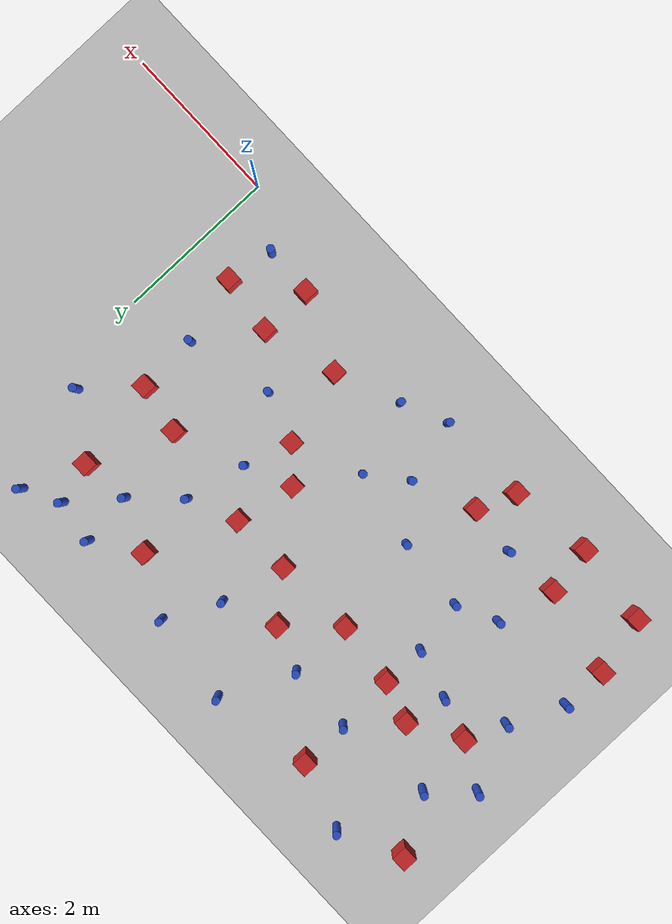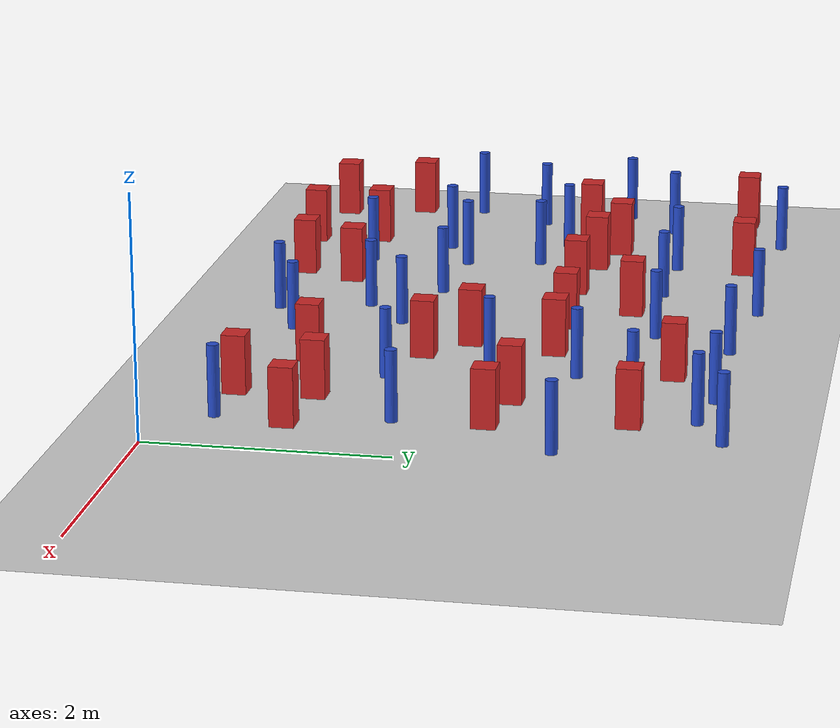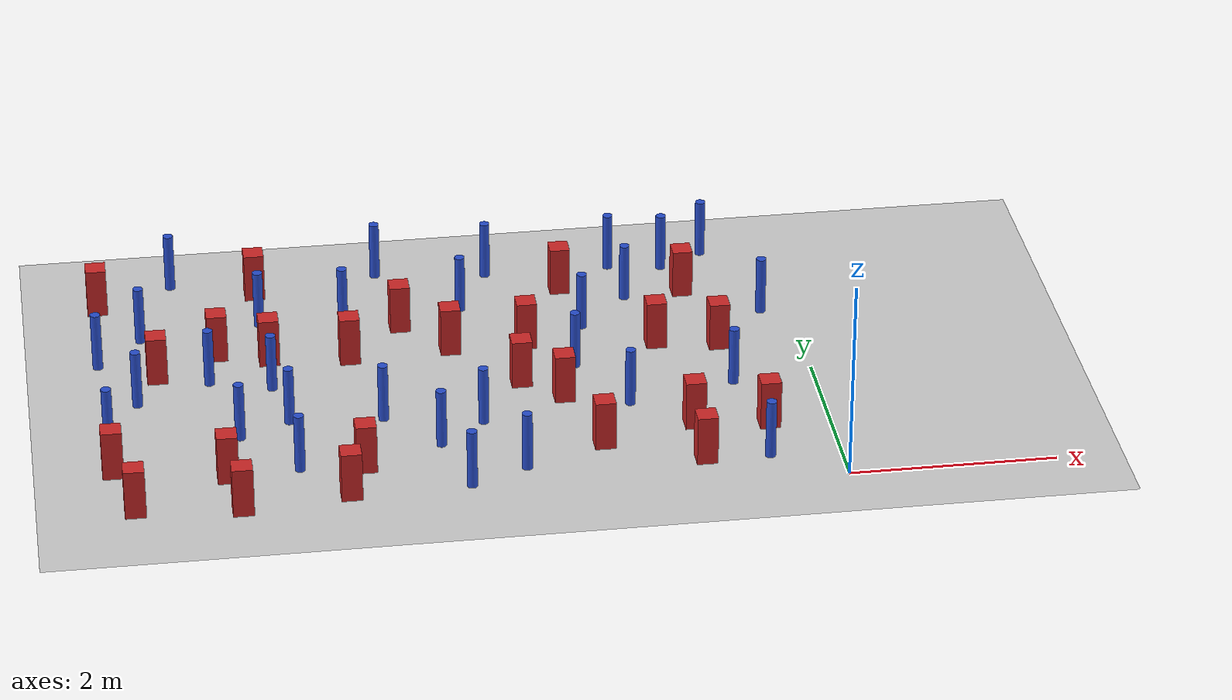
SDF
<sdf version="1.6">
 <world name="default">
  <model name="ground_plane">
   <static>1</static>
   <link name="link">
    <collision name="collision">
     <geometry><plane><normal>0 0 1</normal><size>100 100</size></plane></geometry>
     <surface><friction><ode><mu>100</mu><mu2>50</mu2></ode></friction></surface>
    </collision>
    <visual name="visual">
     <cast_shadows>0</cast_shadows>
     <geometry><plane><normal>0 0 1</normal><size>100 100</size></plane></geometry>
     <material>
      <ambient>1.0 1.0 1.0 1.0</ambient>
      <diffuse>0.8 0.8 0.8 1.0</diffuse>
      <specular>0.01 0.01 0.01 1.000000</specular>
     </material>
    </visual>
   </link>
  </model>
  <model name="pole_obstacle1">
   <static>true</static>
   <pose>-6.14865778615 4.48275335902 7.38925637345e-09 -8.47170692796e-08 1.24976764786e-08 -1.74513093032e-07</pose>
   <link name="link">
    <pose>0 0 0.3 0 -0 0</pose>
    <inertial>
     <mass>1</mass>
     <inertia><ixx>0.145833</ixx><ixy>0</ixy><ixz>0</ixz><iyy>0.145833</iyy><iyz>0</iyz><izz>0.125</izz></inertia>
    </inertial>
    <collision name="collision">
     <geometry><cylinder><radius>0.05</radius><length>.6</length></cylinder></geometry>
    </collision>
    <visual name="visual">
     <geometry><cylinder><radius>0.05</radius><length>.6</length></cylinder></geometry>
     <material>
      <script><name>Gazebo/Blue</name><uri>file://media/materials/scripts/gazebo.material</uri></script>
     </material>
    </visual>
   </link>
  </model>
  <model name="pole_obstacle2">
   <static>true</static>
   <pose>-4.06735478396 4.44115292767 7.38925637345e-09 -8.47170692796e-08 1.24976764786e-08 -1.74513093032e-07</pose>
   <link name="link">
    <pose>0 0 0.3 0 -0 0</pose>
    <inertial>
     <mass>1</mass>
     <inertia><ixx>0.145833</ixx><ixy>0</ixy><ixz>0</ixz><iyy>0.145833</iyy><iyz>0</iyz><izz>0.125</izz></inertia>
    </inertial>
    <collision name="collision">
     <geometry><cylinder><radius>0.05</radius><length>.6</length></cylinder></geometry>
    </collision>
    <visual name="visual">
     <geometry><cylinder><radius>0.05</radius><length>.6</length></cylinder></geometry>
     <material>
      <script><name>Gazebo/Blue</name><uri>file://media/materials/scripts/gazebo.material</uri></script>
     </material>
    </visual>
   </link>
  </model>
  <model name="pole_obstacle21">
   <static>true</static>
   <pose>-1.86597167639 1.57072331773 7.38925637345e-09 -8.471706928e-08 1.24976765079e-08 -1.74513093017e-07</pose>
   <link name="link">
    <pose>0 0 0.3 0 -0 0</pose>
    <inertial>
     <mass>1</mass>
     <inertia><ixx>0.145833</ixx><ixy>0</ixy><ixz>0</ixz><iyy>0.145833</iyy><iyz>0</iyz><izz>0.125</izz></inertia>
    </inertial>
    <collision name="collision">
     <geometry><cylinder><radius>0.05</radius><length>.6</length></cylinder></geometry>
    </collision>
    <visual name="visual">
     <geometry><cylinder><radius>0.05</radius><length>.6</length></cylinder></geometry>
     <material>
      <script><name>Gazebo/Blue</name><uri>file://media/materials/scripts/gazebo.material</uri></script>
     </material>
    </visual>
   </link>
  </model>
  <model name="square_post_obstacle38">
   <static>true</static>
   <pose>-2.22607915903 0.851407876056 1.91545236811e-07 -7.35059704564e-06 1.12565212e-07 2.39332434364e-05</pose>
   <link name="link">
    <pose>0 0 0.25 0 -0 0</pose>
    <inertial>
     <mass>100</mass>
     <inertia>
      <ixx>0.166667</ixx>
      <ixy>0</ixy>
      <ixz>0</ixz>
      <iyy>0.166667</iyy>
      <iyz>0</iyz>
      <izz>0.166667</izz>
     </inertia>
    </inertial>
    <collision name="collision"><geometry><box><size>.2 .2 .5</size></box></geometry></collision>
    <visual name="visual">
     <geometry><box><size>.2 .2 .5</size></box></geometry>
     <material>
      <script><name>Gazebo/Red</name><uri>file://media/materials/scripts/gazebo.material</uri></script>
     </material>
    </visual>
   </link>
  </model>
  <model name="pole_obstacle39">
   <static>true</static>
   <pose>-0.690783097909 0.423462583873 7.38925637345e-09 -8.471706928e-08 1.24976765108e-08 -1.74513093015e-07</pose>
   <link name="link">
    <pose>0 0 0.3 0 -0 0</pose>
    <inertial>
     <mass>1</mass>
     <inertia><ixx>0.145833</ixx><ixy>0</ixy><ixz>0</ixz><iyy>0.145833</iyy><iyz>0</iyz><izz>0.125</izz></inertia>
    </inertial>
    <collision name="collision">
     <geometry><cylinder><radius>0.05</radius><length>.6</length></cylinder></geometry>
    </collision>
    <visual name="visual">
     <geometry><cylinder><radius>0.05</radius><length>.6</length></cylinder></geometry>
     <material>
      <script><name>Gazebo/Blue</name><uri>file://media/materials/scripts/gazebo.material</uri></script>
     </material>
    </visual>
   </link>
  </model>
  <model name="pole_obstacle40">
   <static>true</static>
   <pose>-2.95503908914 4.30115537466 7.38925637345e-09 -8.47170692798e-08 1.24976765033e-08 -1.74513093019e-07</pose>
   <link name="link">
    <pose>0 0 0.3 0 -0 0</pose>
    <inertial>
     <mass>1</mass>
     <inertia><ixx>0.145833</ixx><ixy>0</ixy><ixz>0</ixz><iyy>0.145833</iyy><iyz>0</iyz><izz>0.125</izz></inertia>
    </inertial>
    <collision name="collision">
     <geometry><cylinder><radius>0.05</radius><length>.6</length></cylinder></geometry>
    </collision>
    <visual name="visual">
     <geometry><cylinder><radius>0.05</radius><length>.6</length></cylinder></geometry>
     <material>
      <script><name>Gazebo/Blue</name><uri>file://media/materials/scripts/gazebo.material</uri></script>
     </material>
    </visual>
   </link>
  </model>
  <model name="square_post_obstacle40">
   <static>true</static>
   <pose>-6.73222704593 0.236454288229 1.91545236811e-07 -7.35059704564e-06 1.12565212e-07 2.39332434364e-05</pose>
   <link name="link">
    <pose>0 0 0.25 0 -0 0</pose>
    <inertial>
     <mass>100</mass>
     <inertia>
      <ixx>0.166667</ixx>
      <ixy>0</ixy>
      <ixz>0</ixz>
      <iyy>0.166667</iyy>
      <iyz>0</iyz>
      <izz>0.166667</izz>
     </inertia>
    </inertial>
    <collision name="collision"><geometry><box><size>.2 .2 .5</size></box></geometry></collision>
    <visual name="visual">
     <geometry><box><size>.2 .2 .5</size></box></geometry>
     <material>
      <script><name>Gazebo/Red</name><uri>file://media/materials/scripts/gazebo.material</uri></script>
     </material>
    </visual>
   </link>
  </model>
  <model name="pole_obstacle44">
   <static>true</static>
   <pose>-1.61657921956 3.64272164562 7.38925637345e-09 -8.47170692799e-08 1.24976765053e-08 -1.74513093017e-07</pose>
   <link name="link">
    <pose>0 0 0.3 0 -0 0</pose>
    <inertial>
     <mass>1</mass>
     <inertia><ixx>0.145833</ixx><ixy>0</ixy><ixz>0</ixz><iyy>0.145833</iyy><iyz>0</iyz><izz>0.125</izz></inertia>
    </inertial>
    <collision name="collision">
     <geometry><cylinder><radius>0.05</radius><length>.6</length></cylinder></geometry>
    </collision>
    <visual name="visual">
     <geometry><cylinder><radius>0.05</radius><length>.6</length></cylinder></geometry>
     <material>
      <script><name>Gazebo/Blue</name><uri>file://media/materials/scripts/gazebo.material</uri></script>
     </material>
    </visual>
   </link>
  </model>
  <model name="square_post_obstacle43">
   <static>true</static>
   <pose>-1.44739269963 2.68400470158 1.91545236811e-07 -7.35059704564e-06 1.12565212e-07 2.39332434364e-05</pose>
   <link name="link">
    <pose>0 0 0.25 0 -0 0</pose>
    <inertial>
     <mass>100</mass>
     <inertia>
      <ixx>0.166667</ixx>
      <ixy>0</ixy>
      <ixz>0</ixz>
      <iyy>0.166667</iyy>
      <iyz>0</iyz>
      <izz>0.166667</izz>
     </inertia>
    </inertial>
    <collision name="collision"><geometry><box><size>.2 .2 .5</size></box></geometry></collision>
    <visual name="visual">
     <geometry><box><size>.2 .2 .5</size></box></geometry>
     <material>
      <script><name>Gazebo/Red</name><uri>file://media/materials/scripts/gazebo.material</uri></script>
     </material>
    </visual>
   </link>
  </model>
  <model name="pole_obstacle49">
   <static>true</static>
   <pose>-0.710290570412 4.45550159111 7.38925637345e-09 -8.471706928e-08 1.24976765086e-08 -1.74513093015e-07</pose>
   <link name="link">
    <pose>0 0 0.3 0 -0 0</pose>
    <inertial>
     <mass>1</mass>
     <inertia><ixx>0.145833</ixx><ixy>0</ixy><ixz>0</ixz><iyy>0.145833</iyy><iyz>0</iyz><izz>0.125</izz></inertia>
    </inertial>
    <collision name="collision">
     <geometry><cylinder><radius>0.05</radius><length>.6</length></cylinder></geometry>
    </collision>
    <visual name="visual">
     <geometry><cylinder><radius>0.05</radius><length>.6</length></cylinder></geometry>
     <material>
      <script><name>Gazebo/Blue</name><uri>file://media/materials/scripts/gazebo.material</uri></script>
     </material>
    </visual>
   </link>
  </model>
  <model name="square_post_obstacle52">
   <static>true</static>
   <pose>-2.86460716975 2.1140437889 1.91545236811e-07 -7.35059704564e-06 1.12565212e-07 2.39332434364e-05</pose>
   <link name="link">
    <pose>0 0 0.25 0 -0 0</pose>
    <inertial>
     <mass>100</mass>
     <inertia>
      <ixx>0.166667</ixx>
      <ixy>0</ixy>
      <ixz>0</ixz>
      <iyy>0.166667</iyy>
      <iyz>0</iyz>
      <izz>0.166667</izz>
     </inertia>
    </inertial>
    <collision name="collision"><geometry><box><size>.2 .2 .5</size></box></geometry></collision>
    <visual name="visual">
     <geometry><box><size>.2 .2 .5</size></box></geometry>
     <material>
      <script><name>Gazebo/Red</name><uri>file://media/materials/scripts/gazebo.material</uri></script>
     </material>
    </visual>
   </link>
  </model>
  <model name="square_post_obstacle56">
   <static>true</static>
   <pose>-3.48142821546 2.83543751299 1.91545236811e-07 -7.35059704564e-06 1.12565212e-07 2.39332434364e-05</pose>
   <link name="link">
    <pose>0 0 0.25 0 -0 0</pose>
    <inertial>
     <mass>100</mass>
     <inertia>
      <ixx>0.166667</ixx>
      <ixy>0</ixy>
      <ixz>0</ixz>
      <iyy>0.166667</iyy>
      <iyz>0</iyz>
      <izz>0.166667</izz>
     </inertia>
    </inertial>
    <collision name="collision"><geometry><box><size>.2 .2 .5</size></box></geometry></collision>
    <visual name="visual">
     <geometry><box><size>.2 .2 .5</size></box></geometry>
     <material>
      <script><name>Gazebo/Red</name><uri>file://media/materials/scripts/gazebo.material</uri></script>
     </material>
    </visual>
   </link>
  </model>
  <model name="pole_obstacle55">
   <static>true</static>
   <pose>-6.60409815827 2.18884566418 7.38925637345e-09 -8.47170692798e-08 1.24976764937e-08 -1.74513093023e-07</pose>
   <link name="link">
    <pose>0 0 0.3 0 -0 0</pose>
    <inertial>
     <mass>1</mass>
     <inertia><ixx>0.145833</ixx><ixy>0</ixy><ixz>0</ixz><iyy>0.145833</iyy><iyz>0</iyz><izz>0.125</izz></inertia>
    </inertial>
    <collision name="collision">
     <geometry><cylinder><radius>0.05</radius><length>.6</length></cylinder></geometry>
    </collision>
    <visual name="visual">
     <geometry><cylinder><radius>0.05</radius><length>.6</length></cylinder></geometry>
     <material>
      <script><name>Gazebo/Blue</name><uri>file://media/materials/scripts/gazebo.material</uri></script>
     </material>
    </visual>
   </link>
  </model>
  <model name="pole_obstacle60">
   <static>true</static>
   <pose>-5.14502317689 0.787734742347 7.38925637345e-09 -8.47170692799e-08 1.24976765038e-08 -1.74513093018e-07</pose>
   <link name="link">
    <pose>0 0 0.3 0 -0 0</pose>
    <inertial>
     <mass>1</mass>
     <inertia><ixx>0.145833</ixx><ixy>0</ixy><ixz>0</ixz><iyy>0.145833</iyy><iyz>0</iyz><izz>0.125</izz></inertia>
    </inertial>
    <collision name="collision">
     <geometry><cylinder><radius>0.05</radius><length>.6</length></cylinder></geometry>
    </collision>
    <visual name="visual">
     <geometry><cylinder><radius>0.05</radius><length>.6</length></cylinder></geometry>
     <material>
      <script><name>Gazebo/Blue</name><uri>file://media/materials/scripts/gazebo.material</uri></script>
     </material>
    </visual>
   </link>
  </model>
  <model name="square_post_obstacle65">
   <static>true</static>
   <pose>-6.90237740212 4.10982722146 1.91545236811e-07 -7.35059704564e-06 1.12565212e-07 2.39332434364e-05</pose>
   <link name="link">
    <pose>0 0 0.25 0 -0 0</pose>
    <inertial>
     <mass>100</mass>
     <inertia>
      <ixx>0.166667</ixx>
      <ixy>0</ixy>
      <ixz>0</ixz>
      <iyy>0.166667</iyy>
      <iyz>0</iyz>
      <izz>0.166667</izz>
     </inertia>
    </inertial>
    <collision name="collision"><geometry><box><size>.2 .2 .5</size></box></geometry></collision>
    <visual name="visual">
     <geometry><box><size>.2 .2 .5</size></box></geometry>
     <material>
      <script><name>Gazebo/Red</name><uri>file://media/materials/scripts/gazebo.material</uri></script>
     </material>
    </visual>
   </link>
  </model>
  <model name="pole_obstacle69">
   <static>true</static>
   <pose>-6.91515530589 1.52626352857 7.38925637345e-09 -8.471706928e-08 1.24976765134e-08 -1.74513093015e-07</pose>
   <link name="link">
    <pose>0 0 0.3 0 -0 0</pose>
    <inertial>
     <mass>1</mass>
     <inertia><ixx>0.145833</ixx><ixy>0</ixy><ixz>0</ixz><iyy>0.145833</iyy><iyz>0</iyz><izz>0.125</izz></inertia>
    </inertial>
    <collision name="collision">
     <geometry><cylinder><radius>0.05</radius><length>.6</length></cylinder></geometry>
    </collision>
    <visual name="visual">
     <geometry><cylinder><radius>0.05</radius><length>.6</length></cylinder></geometry>
     <material>
      <script><name>Gazebo/Blue</name><uri>file://media/materials/scripts/gazebo.material</uri></script>
     </material>
    </visual>
   </link>
  </model>
  <model name="pole_obstacle70">
   <static>true</static>
   <pose>-5.66341274395 1.438045553 7.38925637345e-09 -8.471706928e-08 1.24976765134e-08 -1.74513093015e-07</pose>
   <link name="link">
    <pose>0 0 0.3 0 -0 0</pose>
    <inertial>
     <mass>1</mass>
     <inertia><ixx>0.145833</ixx><ixy>0</ixy><ixz>0</ixz><iyy>0.145833</iyy><iyz>0</iyz><izz>0.125</izz></inertia>
    </inertial>
    <collision name="collision">
     <geometry><cylinder><radius>0.05</radius><length>.6</length></cylinder></geometry>
    </collision>
    <visual name="visual">
     <geometry><cylinder><radius>0.05</radius><length>.6</length></cylinder></geometry>
     <material>
      <script><name>Gazebo/Blue</name><uri>file://media/materials/scripts/gazebo.material</uri></script>
     </material>
    </visual>
   </link>
  </model>
  <model name="square_post_obstacle78">
   <static>true</static>
   <pose>-2.24796341832 3.90744460623 1.91545236811e-07 -7.35059704564e-06 1.12565212e-07 2.39332434364e-05</pose>
   <link name="link">
    <pose>0 0 0.25 0 -0 0</pose>
    <inertial>
     <mass>100</mass>
     <inertia>
      <ixx>0.166667</ixx>
      <ixy>0</ixy>
      <ixz>0</ixz>
      <iyy>0.166667</iyy>
      <iyz>0</iyz>
      <izz>0.166667</izz>
     </inertia>
    </inertial>
    <collision name="collision"><geometry><box><size>.2 .2 .5</size></box></geometry></collision>
    <visual name="visual">
     <geometry><box><size>.2 .2 .5</size></box></geometry>
     <material>
      <script><name>Gazebo/Red</name><uri>file://media/materials/scripts/gazebo.material</uri></script>
     </material>
    </visual>
   </link>
  </model>
  <model name="pole_obstacle81">
   <static>true</static>
   <pose>-5.31425257479 3.5985467243 7.38925637345e-09 -8.47170692798e-08 1.24976764937e-08 -1.74513093023e-07</pose>
   <link name="link">
    <pose>0 0 0.3 0 -0 0</pose>
    <inertial>
     <mass>1</mass>
     <inertia><ixx>0.145833</ixx><ixy>0</ixy><ixz>0</ixz><iyy>0.145833</iyy><iyz>0</iyz><izz>0.125</izz></inertia>
    </inertial>
    <collision name="collision">
     <geometry><cylinder><radius>0.05</radius><length>.6</length></cylinder></geometry>
    </collision>
    <visual name="visual">
     <geometry><cylinder><radius>0.05</radius><length>.6</length></cylinder></geometry>
     <material>
      <script><name>Gazebo/Blue</name><uri>file://media/materials/scripts/gazebo.material</uri></script>
     </material>
    </visual>
   </link>
  </model>
  <model name="pole_obstacle82">
   <static>true</static>
   <pose>-2.1235779773 3.11872001168 7.38925637345e-09 -8.47170692798e-08 1.24976764939e-08 -1.74513093025e-07</pose>
   <link name="link">
    <pose>0 0 0.3 0 -0 0</pose>
    <inertial>
     <mass>1</mass>
     <inertia><ixx>0.145833</ixx><ixy>0</ixy><ixz>0</ixz><iyy>0.145833</iyy><iyz>0</iyz><izz>0.125</izz></inertia>
    </inertial>
    <collision name="collision">
     <geometry><cylinder><radius>0.05</radius><length>.6</length></cylinder></geometry>
    </collision>
    <visual name="visual">
     <geometry><cylinder><radius>0.05</radius><length>.6</length></cylinder></geometry>
     <material>
      <script><name>Gazebo/Blue</name><uri>file://media/materials/scripts/gazebo.material</uri></script>
     </material>
    </visual>
   </link>
  </model>
  <model name="square_post_obstacle85">
   <static>true</static>
   <pose>-1.31230567174 1.10321324677 1.91545236811e-07 -7.35059704564e-06 1.12565212e-07 2.39332434364e-05</pose>
   <link name="link">
    <pose>0 0 0.25 0 -0 0</pose>
    <inertial>
     <mass>100</mass>
     <inertia>
      <ixx>0.166667</ixx>
      <ixy>0</ixy>
      <ixz>0</ixz>
      <iyy>0.166667</iyy>
      <iyz>0</iyz>
      <izz>0.166667</izz>
     </inertia>
    </inertial>
    <collision name="collision"><geometry><box><size>.2 .2 .5</size></box></geometry></collision>
    <visual name="visual">
     <geometry><box><size>.2 .2 .5</size></box></geometry>
     <material>
      <script><name>Gazebo/Red</name><uri>file://media/materials/scripts/gazebo.material</uri></script>
     </material>
    </visual>
   </link>
  </model>
  <model name="square_post_obstacle93">
   <static>true</static>
   <pose>-5.83377725022 0.724433717618 1.91545236811e-07 -7.35059704564e-06 1.12565212e-07 2.39332434364e-05</pose>
   <link name="link">
    <pose>0 0 0.25 0 -0 0</pose>
    <inertial>
     <mass>100</mass>
     <inertia>
      <ixx>0.166667</ixx>
      <ixy>0</ixy>
      <ixz>0</ixz>
      <iyy>0.166667</iyy>
      <iyz>0</iyz>
      <izz>0.166667</izz>
     </inertia>
    </inertial>
    <collision name="collision"><geometry><box><size>.2 .2 .5</size></box></geometry></collision>
    <visual name="visual">
     <geometry><box><size>.2 .2 .5</size></box></geometry>
     <material>
      <script><name>Gazebo/Red</name><uri>file://media/materials/scripts/gazebo.material</uri></script>
     </material>
    </visual>
   </link>
  </model>
  <model name="square_post_obstacle94">
   <static>true</static>
   <pose>-0.600754613226 1.01032702605 1.91545236811e-07 -7.35059704564e-06 1.12565212e-07 2.39332434364e-05</pose>
   <link name="link">
    <pose>0 0 0.25 0 -0 0</pose>
    <inertial>
     <mass>100</mass>
     <inertia>
      <ixx>0.166667</ixx>
      <ixy>0</ixy>
      <ixz>0</ixz>
      <iyy>0.166667</iyy>
      <iyz>0</iyz>
      <izz>0.166667</izz>
     </inertia>
    </inertial>
    <collision name="collision"><geometry><box><size>.2 .2 .5</size></box></geometry></collision>
    <visual name="visual">
     <geometry><box><size>.2 .2 .5</size></box></geometry>
     <material>
      <script><name>Gazebo/Red</name><uri>file://media/materials/scripts/gazebo.material</uri></script>
     </material>
    </visual>
   </link>
  </model>
  <model name="pole_obstacle107">
   <static>true</static>
   <pose>-3.56458843002 0.277346794933 7.38925637345e-09 -8.471706928e-08 1.24976765126e-08 -1.74513093015e-07</pose>
   <link name="link">
    <pose>0 0 0.3 0 -0 0</pose>
    <inertial>
     <mass>1</mass>
     <inertia><ixx>0.145833</ixx><ixy>0</ixy><ixz>0</ixz><iyy>0.145833</iyy><iyz>0</iyz><izz>0.125</izz></inertia>
    </inertial>
    <collision name="collision">
     <geometry><cylinder><radius>0.05</radius><length>.6</length></cylinder></geometry>
    </collision>
    <visual name="visual">
     <geometry><cylinder><radius>0.05</radius><length>.6</length></cylinder></geometry>
     <material>
      <script><name>Gazebo/Blue</name><uri>file://media/materials/scripts/gazebo.material</uri></script>
     </material>
    </visual>
   </link>
  </model>
  <model name="pole_obstacle114">
   <static>true</static>
   <pose>-5.16998351022 1.67273129654 7.38925637345e-09 -8.471706928e-08 1.24976765134e-08 -1.74513093015e-07</pose>
   <link name="link">
    <pose>0 0 0.3 0 -0 0</pose>
    <inertial>
     <mass>1</mass>
     <inertia><ixx>0.145833</ixx><ixy>0</ixy><ixz>0</ixz><iyy>0.145833</iyy><iyz>0</iyz><izz>0.125</izz></inertia>
    </inertial>
    <collision name="collision">
     <geometry><cylinder><radius>0.05</radius><length>.6</length></cylinder></geometry>
    </collision>
    <visual name="visual">
     <geometry><cylinder><radius>0.05</radius><length>.6</length></cylinder></geometry>
     <material>
      <script><name>Gazebo/Blue</name><uri>file://media/materials/scripts/gazebo.material</uri></script>
     </material>
    </visual>
   </link>
  </model>
  <model name="square_post_obstacle109">
   <static>true</static>
   <pose>-6.38499440083 2.66430794587 1.91545236811e-07 -7.35059704564e-06 1.12565212e-07 2.39332434364e-05</pose>
   <link name="link">
    <pose>0 0 0.25 0 -0 0</pose>
    <inertial>
     <mass>100</mass>
     <inertia>
      <ixx>0.166667</ixx>
      <ixy>0</ixy>
      <ixz>0</ixz>
      <iyy>0.166667</iyy>
      <iyz>0</iyz>
      <izz>0.166667</izz>
     </inertia>
    </inertial>
    <collision name="collision"><geometry><box><size>.2 .2 .5</size></box></geometry></collision>
    <visual name="visual">
     <geometry><box><size>.2 .2 .5</size></box></geometry>
     <material>
      <script><name>Gazebo/Red</name><uri>file://media/materials/scripts/gazebo.material</uri></script>
     </material>
    </visual>
   </link>
  </model>
  <model name="square_post_obstacle114">
   <static>true</static>
   <pose>-5.73395270936 0.132266583894 1.91545236811e-07 -7.35059704564e-06 1.12565212e-07 2.39332434364e-05</pose>
   <link name="link">
    <pose>0 0 0.25 0 -0 0</pose>
    <inertial>
     <mass>100</mass>
     <inertia>
      <ixx>0.166667</ixx>
      <ixy>0</ixy>
      <ixz>0</ixz>
      <iyy>0.166667</iyy>
      <iyz>0</iyz>
      <izz>0.166667</izz>
     </inertia>
    </inertial>
    <collision name="collision"><geometry><box><size>.2 .2 .5</size></box></geometry></collision>
    <visual name="visual">
     <geometry><box><size>.2 .2 .5</size></box></geometry>
     <material>
      <script><name>Gazebo/Red</name><uri>file://media/materials/scripts/gazebo.material</uri></script>
     </material>
    </visual>
   </link>
  </model>
  <model name="pole_obstacle130">
   <static>true</static>
   <pose>-3.0094705868 0.524674717035 7.38925637345e-09 -8.47170692797e-08 1.24976764783e-08 -1.74513093034e-07</pose>
   <link name="link">
    <pose>0 0 0.3 0 -0 0</pose>
    <inertial>
     <mass>1</mass>
     <inertia><ixx>0.145833</ixx><ixy>0</ixy><ixz>0</ixz><iyy>0.145833</iyy><iyz>0</iyz><izz>0.125</izz></inertia>
    </inertial>
    <collision name="collision">
     <geometry><cylinder><radius>0.05</radius><length>.6</length></cylinder></geometry>
    </collision>
    <visual name="visual">
     <geometry><cylinder><radius>0.05</radius><length>.6</length></cylinder></geometry>
     <material>
      <script><name>Gazebo/Blue</name><uri>file://media/materials/scripts/gazebo.material</uri></script>
     </material>
    </visual>
   </link>
  </model>
  <model name="pole_obstacle136">
   <static>true</static>
   <pose>-1.15704277731 4.21577024329 7.38925637345e-09 -8.47170692799e-08 1.24976765033e-08 -1.74513093018e-07</pose>
   <link name="link">
    <pose>0 0 0.3 0 -0 0</pose>
    <inertial>
     <mass>1</mass>
     <inertia><ixx>0.145833</ixx><ixy>0</ixy><ixz>0</ixz><iyy>0.145833</iyy><iyz>0</iyz><izz>0.125</izz></inertia>
    </inertial>
    <collision name="collision">
     <geometry><cylinder><radius>0.05</radius><length>.6</length></cylinder></geometry>
    </collision>
    <visual name="visual">
     <geometry><cylinder><radius>0.05</radius><length>.6</length></cylinder></geometry>
     <material>
      <script><name>Gazebo/Blue</name><uri>file://media/materials/scripts/gazebo.material</uri></script>
     </material>
    </visual>
   </link>
  </model>
  <model name="square_post_obstacle126">
   <static>true</static>
   <pose>-4.70818930514 0.260790215962 1.91545236811e-07 -7.35059704564e-06 1.12565212e-07 2.39332434364e-05</pose>
   <link name="link">
    <pose>0 0 0.25 0 -0 0</pose>
    <inertial>
     <mass>100</mass>
     <inertia>
      <ixx>0.166667</ixx>
      <ixy>0</ixy>
      <ixz>0</ixz>
      <iyy>0.166667</iyy>
      <iyz>0</iyz>
      <izz>0.166667</izz>
     </inertia>
    </inertial>
    <collision name="collision"><geometry><box><size>.2 .2 .5</size></box></geometry></collision>
    <visual name="visual">
     <geometry><box><size>.2 .2 .5</size></box></geometry>
     <material>
      <script><name>Gazebo/Red</name><uri>file://media/materials/scripts/gazebo.material</uri></script>
     </material>
    </visual>
   </link>
  </model>
  <model name="square_post_obstacle130">
   <static>true</static>
   <pose>-1.02901003338 3.69196261055 1.91545236811e-07 -7.35059704564e-06 1.12565212e-07 2.39332434364e-05</pose>
   <link name="link">
    <pose>0 0 0.25 0 -0 0</pose>
    <inertial>
     <mass>100</mass>
     <inertia>
      <ixx>0.166667</ixx>
      <ixy>0</ixy>
      <ixz>0</ixz>
      <iyy>0.166667</iyy>
      <iyz>0</iyz>
      <izz>0.166667</izz>
     </inertia>
    </inertial>
    <collision name="collision"><geometry><box><size>.2 .2 .5</size></box></geometry></collision>
    <visual name="visual">
     <geometry><box><size>.2 .2 .5</size></box></geometry>
     <material>
      <script><name>Gazebo/Red</name><uri>file://media/materials/scripts/gazebo.material</uri></script>
     </material>
    </visual>
   </link>
  </model>
  <model name="pole_obstacle143">
   <static>true</static>
   <pose>-5.88446739142 2.51136598386 7.38925637345e-09 -8.47170692798e-08 1.24976764937e-08 -1.74513093023e-07</pose>
   <link name="link">
    <pose>0 0 0.3 0 -0 0</pose>
    <inertial>
     <mass>1</mass>
     <inertia><ixx>0.145833</ixx><ixy>0</ixy><ixz>0</ixz><iyy>0.145833</iyy><iyz>0</iyz><izz>0.125</izz></inertia>
    </inertial>
    <collision name="collision">
     <geometry><cylinder><radius>0.05</radius><length>.6</length></cylinder></geometry>
    </collision>
    <visual name="visual">
     <geometry><cylinder><radius>0.05</radius><length>.6</length></cylinder></geometry>
     <material>
      <script><name>Gazebo/Blue</name><uri>file://media/materials/scripts/gazebo.material</uri></script>
     </material>
    </visual>
   </link>
  </model>
  <model name="square_post_obstacle136">
   <static>true</static>
   <pose>-4.48335180431 2.78338271974 1.91545236811e-07 -7.35059704564e-06 1.12565212e-07 2.39332434364e-05</pose>
   <link name="link">
    <pose>0 0 0.25 0 -0 0</pose>
    <inertial>
     <mass>100</mass>
     <inertia>
      <ixx>0.166667</ixx>
      <ixy>0</ixy>
      <ixz>0</ixz>
      <iyy>0.166667</iyy>
      <iyz>0</iyz>
      <izz>0.166667</izz>
     </inertia>
    </inertial>
    <collision name="collision"><geometry><box><size>.2 .2 .5</size></box></geometry></collision>
    <visual name="visual">
     <geometry><box><size>.2 .2 .5</size></box></geometry>
     <material>
      <script><name>Gazebo/Red</name><uri>file://media/materials/scripts/gazebo.material</uri></script>
     </material>
    </visual>
   </link>
  </model>
  <model name="pole_obstacle147">
   <static>true</static>
   <pose>-0.300934471647 3.18273411583 7.38925637345e-09 -8.471706928e-08 1.24976765084e-08 -1.74513093017e-07</pose>
   <link name="link">
    <pose>0 0 0.3 0 -0 0</pose>
    <inertial>
     <mass>1</mass>
     <inertia><ixx>0.145833</ixx><ixy>0</ixy><ixz>0</ixz><iyy>0.145833</iyy><iyz>0</iyz><izz>0.125</izz></inertia>
    </inertial>
    <collision name="collision">
     <geometry><cylinder><radius>0.05</radius><length>.6</length></cylinder></geometry>
    </collision>
    <visual name="visual">
     <geometry><cylinder><radius>0.05</radius><length>.6</length></cylinder></geometry>
     <material>
      <script><name>Gazebo/Blue</name><uri>file://media/materials/scripts/gazebo.material</uri></script>
     </material>
    </visual>
   </link>
  </model>
  <model name="pole_obstacle153">
   <static>true</static>
   <pose>-5.28550151443 2.33236730993 7.38925637345e-09 -8.47170692798e-08 1.24976764937e-08 -1.74513093023e-07</pose>
   <link name="link">
    <pose>0 0 0.3 0 -0 0</pose>
    <inertial>
     <mass>1</mass>
     <inertia><ixx>0.145833</ixx><ixy>0</ixy><ixz>0</ixz><iyy>0.145833</iyy><iyz>0</iyz><izz>0.125</izz></inertia>
    </inertial>
    <collision name="collision">
     <geometry><cylinder><radius>0.05</radius><length>.6</length></cylinder></geometry>
    </collision>
    <visual name="visual">
     <geometry><cylinder><radius>0.05</radius><length>.6</length></cylinder></geometry>
     <material>
      <script><name>Gazebo/Blue</name><uri>file://media/materials/scripts/gazebo.material</uri></script>
     </material>
    </visual>
   </link>
  </model>
  <model name="square_post_obstacle150">
   <static>true</static>
   <pose>-0.836785223146 2.57500030621 1.91545236811e-07 -7.35059704564e-06 1.12565212e-07 2.39332434364e-05</pose>
   <link name="link">
    <pose>0 0 0.25 0 -0 0</pose>
    <inertial>
     <mass>100</mass>
     <inertia>
      <ixx>0.166667</ixx>
      <ixy>0</ixy>
      <ixz>0</ixz>
      <iyy>0.166667</iyy>
      <iyz>0</iyz>
      <izz>0.166667</izz>
     </inertia>
    </inertial>
    <collision name="collision"><geometry><box><size>.2 .2 .5</size></box></geometry></collision>
    <visual name="visual">
     <geometry><box><size>.2 .2 .5</size></box></geometry>
     <material>
      <script><name>Gazebo/Red</name><uri>file://media/materials/scripts/gazebo.material</uri></script>
     </material>
    </visual>
   </link>
  </model>
  <model name="square_post_obstacle153">
   <static>true</static>
   <pose>-5.77244897049 3.02476113214 1.91545236811e-07 -7.35059704564e-06 1.12565212e-07 2.39332434364e-05</pose>
   <link name="link">
    <pose>0 0 0.25 0 -0 0</pose>
    <inertial>
     <mass>100</mass>
     <inertia>
      <ixx>0.166667</ixx>
      <ixy>0</ixy>
      <ixz>0</ixz>
      <iyy>0.166667</iyy>
      <iyz>0</iyz>
      <izz>0.166667</izz>
     </inertia>
    </inertial>
    <collision name="collision"><geometry><box><size>.2 .2 .5</size></box></geometry></collision>
    <visual name="visual">
     <geometry><box><size>.2 .2 .5</size></box></geometry>
     <material>
      <script><name>Gazebo/Red</name><uri>file://media/materials/scripts/gazebo.material</uri></script>
     </material>
    </visual>
   </link>
  </model>
  <model name="pole_obstacle160">
   <static>true</static>
   <pose>-6.50828033543 3.43619363884 7.38925637345e-09 -8.47170692798e-08 1.24976764937e-08 -1.74513093023e-07</pose>
   <link name="link">
    <pose>0 0 0.3 0 -0 0</pose>
    <inertial>
     <mass>1</mass>
     <inertia><ixx>0.145833</ixx><ixy>0</ixy><ixz>0</ixz><iyy>0.145833</iyy><iyz>0</iyz><izz>0.125</izz></inertia>
    </inertial>
    <collision name="collision">
     <geometry><cylinder><radius>0.05</radius><length>.6</length></cylinder></geometry>
    </collision>
    <visual name="visual">
     <geometry><cylinder><radius>0.05</radius><length>.6</length></cylinder></geometry>
     <material>
      <script><name>Gazebo/Blue</name><uri>file://media/materials/scripts/gazebo.material</uri></script>
     </material>
    </visual>
   </link>
  </model>
  <model name="pole_obstacle163">
   <static>true</static>
   <pose>-4.47629385284 3.56212439243 7.38925637345e-09 -8.47170692798e-08 1.24976764937e-08 -1.74513093023e-07</pose>
   <link name="link">
    <pose>0 0 0.3 0 -0 0</pose>
    <inertial>
     <mass>1</mass>
     <inertia><ixx>0.145833</ixx><ixy>0</ixy><ixz>0</ixz><iyy>0.145833</iyy><iyz>0</iyz><izz>0.125</izz></inertia>
    </inertial>
    <collision name="collision">
     <geometry><cylinder><radius>0.05</radius><length>.6</length></cylinder></geometry>
    </collision>
    <visual name="visual">
     <geometry><cylinder><radius>0.05</radius><length>.6</length></cylinder></geometry>
     <material>
      <script><name>Gazebo/Blue</name><uri>file://media/materials/scripts/gazebo.material</uri></script>
     </material>
    </visual>
   </link>
  </model>
  <model name="square_post_obstacle157">
   <static>true</static>
   <pose>-5.272253835 2.86653572898 1.91545236811e-07 -7.35059704564e-06 1.12565212e-07 2.39332434364e-05</pose>
   <link name="link">
    <pose>0 0 0.25 0 -0 0</pose>
    <inertial>
     <mass>100</mass>
     <inertia>
      <ixx>0.166667</ixx>
      <ixy>0</ixy>
      <ixz>0</ixz>
      <iyy>0.166667</iyy>
      <iyz>0</iyz>
      <izz>0.166667</izz>
     </inertia>
    </inertial>
    <collision name="collision"><geometry><box><size>.2 .2 .5</size></box></geometry></collision>
    <visual name="visual">
     <geometry><box><size>.2 .2 .5</size></box></geometry>
     <material>
      <script><name>Gazebo/Red</name><uri>file://media/materials/scripts/gazebo.material</uri></script>
     </material>
    </visual>
   </link>
  </model>
  <model name="pole_obstacle165">
   <static>true</static>
   <pose>-3.76640245076 1.05415088029 7.38925637345e-09 -8.47170692796e-08 1.24976764713e-08 -1.74513093037e-07</pose>
   <link name="link">
    <pose>0 0 0.3 0 -0 0</pose>
    <inertial>
     <mass>1</mass>
     <inertia><ixx>0.145833</ixx><ixy>0</ixy><ixz>0</ixz><iyy>0.145833</iyy><iyz>0</iyz><izz>0.125</izz></inertia>
    </inertial>
    <collision name="collision">
     <geometry><cylinder><radius>0.05</radius><length>.6</length></cylinder></geometry>
    </collision>
    <visual name="visual">
     <geometry><cylinder><radius>0.05</radius><length>.6</length></cylinder></geometry>
     <material>
      <script><name>Gazebo/Blue</name><uri>file://media/materials/scripts/gazebo.material</uri></script>
     </material>
    </visual>
   </link>
  </model>
  <model name="square_post_obstacle158">
   <static>true</static>
   <pose>-6.90529957141 0.956992708506 1.91545236811e-07 -7.35059704564e-06 1.12565212e-07 2.39332434364e-05</pose>
   <link name="link">
    <pose>0 0 0.25 0 -0 0</pose>
    <inertial>
     <mass>100</mass>
     <inertia>
      <ixx>0.166667</ixx>
      <ixy>0</ixy>
      <ixz>0</ixz>
      <iyy>0.166667</iyy>
      <iyz>0</iyz>
      <izz>0.166667</izz>
     </inertia>
    </inertial>
    <collision name="collision"><geometry><box><size>.2 .2 .5</size></box></geometry></collision>
    <visual name="visual">
     <geometry><box><size>.2 .2 .5</size></box></geometry>
     <material>
      <script><name>Gazebo/Red</name><uri>file://media/materials/scripts/gazebo.material</uri></script>
     </material>
    </visual>
   </link>
  </model>
  <model name="square_post_obstacle162">
   <static>true</static>
   <pose>-2.48751113567 1.77240542857 1.91545236811e-07 -7.35059704564e-06 1.12565212e-07 2.39332434364e-05</pose>
   <link name="link">
    <pose>0 0 0.25 0 -0 0</pose>
    <inertial>
     <mass>100</mass>
     <inertia>
      <ixx>0.166667</ixx>
      <ixy>0</ixy>
      <ixz>0</ixz>
      <iyy>0.166667</iyy>
      <iyz>0</iyz>
      <izz>0.166667</izz>
     </inertia>
    </inertial>
    <collision name="collision"><geometry><box><size>.2 .2 .5</size></box></geometry></collision>
    <visual name="visual">
     <geometry><box><size>.2 .2 .5</size></box></geometry>
     <material>
      <script><name>Gazebo/Red</name><uri>file://media/materials/scripts/gazebo.material</uri></script>
     </material>
    </visual>
   </link>
  </model>
  <model name="pole_obstacle172">
   <static>true</static>
   <pose>-3.31779806718 1.41919159745 7.38925637345e-09 -8.471706928e-08 1.24976765152e-08 -1.74513093012e-07</pose>
   <link name="link">
    <pose>0 0 0.3 0 -0 0</pose>
    <inertial>
     <mass>1</mass>
     <inertia><ixx>0.145833</ixx><ixy>0</ixy><ixz>0</ixz><iyy>0.145833</iyy><iyz>0</iyz><izz>0.125</izz></inertia>
    </inertial>
    <collision name="collision">
     <geometry><cylinder><radius>0.05</radius><length>.6</length></cylinder></geometry>
    </collision>
    <visual name="visual">
     <geometry><cylinder><radius>0.05</radius><length>.6</length></cylinder></geometry>
     <material>
      <script><name>Gazebo/Blue</name><uri>file://media/materials/scripts/gazebo.material</uri></script>
     </material>
    </visual>
   </link>
  </model>
  <model name="square_post_obstacle169">
   <static>true</static>
   <pose>-1.30861382679 0.449342656865 1.91545236811e-07 -7.35059704564e-06 1.12565212e-07 2.39332434364e-05</pose>
   <link name="link">
    <pose>0 0 0.25 0 -0 0</pose>
    <inertial>
     <mass>100</mass>
     <inertia>
      <ixx>0.166667</ixx>
      <ixy>0</ixy>
      <ixz>0</ixz>
      <iyy>0.166667</iyy>
      <iyz>0</iyz>
      <izz>0.166667</izz>
     </inertia>
    </inertial>
    <collision name="collision"><geometry><box><size>.2 .2 .5</size></box></geometry></collision>
    <visual name="visual">
     <geometry><box><size>.2 .2 .5</size></box></geometry>
     <material>
      <script><name>Gazebo/Red</name><uri>file://media/materials/scripts/gazebo.material</uri></script>
     </material>
    </visual>
   </link>
  </model>
  <model name="square_post_obstacle170">
   <static>true</static>
   <pose>-4.52344710908 0.732828932506 1.91545236811e-07 -7.35059704564e-06 1.12565212e-07 2.39332434364e-05</pose>
   <link name="link">
    <pose>0 0 0.25 0 -0 0</pose>
    <inertial>
     <mass>100</mass>
     <inertia>
      <ixx>0.166667</ixx>
      <ixy>0</ixy>
      <ixz>0</ixz>
      <iyy>0.166667</iyy>
      <iyz>0</iyz>
      <izz>0.166667</izz>
     </inertia>
    </inertial>
    <collision name="collision"><geometry><box><size>.2 .2 .5</size></box></geometry></collision>
    <visual name="visual">
     <geometry><box><size>.2 .2 .5</size></box></geometry>
     <material>
      <script><name>Gazebo/Red</name><uri>file://media/materials/scripts/gazebo.material</uri></script>
     </material>
    </visual>
   </link>
  </model>
  <model name="square_post_obstacle171">
   <static>true</static>
   <pose>-5.31508897862 4.20535684119 1.91545236811e-07 -7.35059704564e-06 1.12565212e-07 2.39332434364e-05</pose>
   <link name="link">
    <pose>0 0 0.25 0 -0 0</pose>
    <inertial>
     <mass>100</mass>
     <inertia>
      <ixx>0.166667</ixx>
      <ixy>0</ixy>
      <ixz>0</ixz>
      <iyy>0.166667</iyy>
      <iyz>0</iyz>
      <izz>0.166667</izz>
     </inertia>
    </inertial>
    <collision name="collision"><geometry><box><size>.2 .2 .5</size></box></geometry></collision>
    <visual name="visual">
     <geometry><box><size>.2 .2 .5</size></box></geometry>
     <material>
      <script><name>Gazebo/Red</name><uri>file://media/materials/scripts/gazebo.material</uri></script>
     </material>
    </visual>
   </link>
  </model>
  <model name="pole_obstacle187">
   <static>true</static>
   <pose>-4.26795632971 1.6056291224 7.38925637345e-09 -8.471706928e-08 1.24976765134e-08 -1.74513093015e-07</pose>
   <link name="link">
    <pose>0 0 0.3 0 -0 0</pose>
    <inertial>
     <mass>1</mass>
     <inertia><ixx>0.145833</ixx><ixy>0</ixy><ixz>0</ixz><iyy>0.145833</iyy><iyz>0</iyz><izz>0.125</izz></inertia>
    </inertial>
    <collision name="collision">
     <geometry><cylinder><radius>0.05</radius><length>.6</length></cylinder></geometry>
    </collision>
    <visual name="visual">
     <geometry><cylinder><radius>0.05</radius><length>.6</length></cylinder></geometry>
     <material>
      <script><name>Gazebo/Blue</name><uri>file://media/materials/scripts/gazebo.material</uri></script>
     </material>
    </visual>
   </link>
  </model>
  <model name="square_post_obstacle174">
   <static>true</static>
   <pose>-2.72348234044 2.85018365378 1.91545236811e-07 -7.35059704564e-06 1.12565212e-07 2.39332434364e-05</pose>
   <link name="link">
    <pose>0 0 0.25 0 -0 0</pose>
    <inertial>
     <mass>100</mass>
     <inertia>
      <ixx>0.166667</ixx>
      <ixy>0</ixy>
      <ixz>0</ixz>
      <iyy>0.166667</iyy>
      <iyz>0</iyz>
      <izz>0.166667</izz>
     </inertia>
    </inertial>
    <collision name="collision"><geometry><box><size>.2 .2 .5</size></box></geometry></collision>
    <visual name="visual">
     <geometry><box><size>.2 .2 .5</size></box></geometry>
     <material>
      <script><name>Gazebo/Red</name><uri>file://media/materials/scripts/gazebo.material</uri></script>
     </material>
    </visual>
   </link>
  </model>
  <model name="square_post_obstacle188">
   <static>true</static>
   <pose>-3.92973171775 3.3536181738 1.91545236811e-07 -7.35059704564e-06 1.12565212e-07 2.39332434364e-05</pose>
   <link name="link">
    <pose>0 0 0.25 0 -0 0</pose>
    <inertial>
     <mass>100</mass>
     <inertia>
      <ixx>0.166667</ixx>
      <ixy>0</ixy>
      <ixz>0</ixz>
      <iyy>0.166667</iyy>
      <iyz>0</iyz>
      <izz>0.166667</izz>
     </inertia>
    </inertial>
    <collision name="collision"><geometry><box><size>.2 .2 .5</size></box></geometry></collision>
    <visual name="visual">
     <geometry><box><size>.2 .2 .5</size></box></geometry>
     <material>
      <script><name>Gazebo/Red</name><uri>file://media/materials/scripts/gazebo.material</uri></script>
     </material>
    </visual>
   </link>
  </model>
  <model name="pole_obstacle188">
   <static>true</static>
   <pose>-3.28654558014 3.63350439621 7.38925637345e-09 -8.47170692798e-08 1.24976764939e-08 -1.74513093025e-07</pose>
   <link name="link">
    <pose>0 0 0.3 0 -0 0</pose>
    <inertial>
     <mass>1</mass>
     <inertia><ixx>0.145833</ixx><ixy>0</ixy><ixz>0</ixz><iyy>0.145833</iyy><iyz>0</iyz><izz>0.125</izz></inertia>
    </inertial>
    <collision name="collision">
     <geometry><cylinder><radius>0.05</radius><length>.6</length></cylinder></geometry>
    </collision>
    <visual name="visual">
     <geometry><cylinder><radius>0.05</radius><length>.6</length></cylinder></geometry>
     <material>
      <script><name>Gazebo/Blue</name><uri>file://media/materials/scripts/gazebo.material</uri></script>
     </material>
    </visual>
   </link>
  </model>
  <model name="pole_obstacle203">
   <static>true</static>
   <pose>-1.69172407443 4.29840602517 7.38925637345e-09 -8.47170692799e-08 1.24976765033e-08 -1.74513093018e-07</pose>
   <link name="link">
    <pose>0 0 0.3 0 -0 0</pose>
    <inertial>
     <mass>1</mass>
     <inertia><ixx>0.145833</ixx><ixy>0</ixy><ixz>0</ixz><iyy>0.145833</iyy><iyz>0</iyz><izz>0.125</izz></inertia>
    </inertial>
    <collision name="collision">
     <geometry><cylinder><radius>0.05</radius><length>.6</length></cylinder></geometry>
    </collision>
    <visual name="visual">
     <geometry><cylinder><radius>0.05</radius><length>.6</length></cylinder></geometry>
     <material>
      <script><name>Gazebo/Blue</name><uri>file://media/materials/scripts/gazebo.material</uri></script>
     </material>
    </visual>
   </link>
  </model>
  <model name="pole_obstacle209">
   <static>true</static>
   <pose>-2.29867909716 2.36251034802 7.38925637345e-09 -8.47170692798e-08 1.24976764939e-08 -1.74513093025e-07</pose>
   <link name="link">
    <pose>0 0 0.3 0 -0 0</pose>
    <inertial>
     <mass>1</mass>
     <inertia><ixx>0.145833</ixx><ixy>0</ixy><ixz>0</ixz><iyy>0.145833</iyy><iyz>0</iyz><izz>0.125</izz></inertia>
    </inertial>
    <collision name="collision">
     <geometry><cylinder><radius>0.05</radius><length>.6</length></cylinder></geometry>
    </collision>
    <visual name="visual">
     <geometry><cylinder><radius>0.05</radius><length>.6</length></cylinder></geometry>
     <material>
      <script><name>Gazebo/Blue</name><uri>file://media/materials/scripts/gazebo.material</uri></script>
     </material>
    </visual>
   </link>
  </model>
  <model name="pole_obstacle214">
   <static>true</static>
   <pose>-6.95114611174 2.97446113379 7.38925637345e-09 -8.47170692798e-08 1.24976764937e-08 -1.74513093023e-07</pose>
   <link name="link">
    <pose>0 0 0.3 0 -0 0</pose>
    <inertial>
     <mass>1</mass>
     <inertia><ixx>0.145833</ixx><ixy>0</ixy><ixz>0</ixz><iyy>0.145833</iyy><iyz>0</iyz><izz>0.125</izz></inertia>
    </inertial>
    <collision name="collision">
     <geometry><cylinder><radius>0.05</radius><length>.6</length></cylinder></geometry>
    </collision>
    <visual name="visual">
     <geometry><cylinder><radius>0.05</radius><length>.6</length></cylinder></geometry>
     <material>
      <script><name>Gazebo/Blue</name><uri>file://media/materials/scripts/gazebo.material</uri></script>
     </material>
    </visual>
   </link>
  </model>
  <model name="pole_obstacle225">
   <static>true</static>
   <pose>-0.807077990425 1.83066002078 7.38925637345e-09 -8.47170692799e-08 1.24976765033e-08 -1.7451309302e-07</pose>
   <link name="link">
    <pose>0 0 0.3 0 -0 0</pose>
    <inertial>
     <mass>1</mass>
     <inertia><ixx>0.145833</ixx><ixy>0</ixy><ixz>0</ixz><iyy>0.145833</iyy><iyz>0</iyz><izz>0.125</izz></inertia>
    </inertial>
    <collision name="collision">
     <geometry><cylinder><radius>0.05</radius><length>.6</length></cylinder></geometry>
    </collision>
    <visual name="visual">
     <geometry><cylinder><radius>0.05</radius><length>.6</length></cylinder></geometry>
     <material>
      <script><name>Gazebo/Blue</name><uri>file://media/materials/scripts/gazebo.material</uri></script>
     </material>
    </visual>
   </link>
  </model>
 </world>
</sdf>
